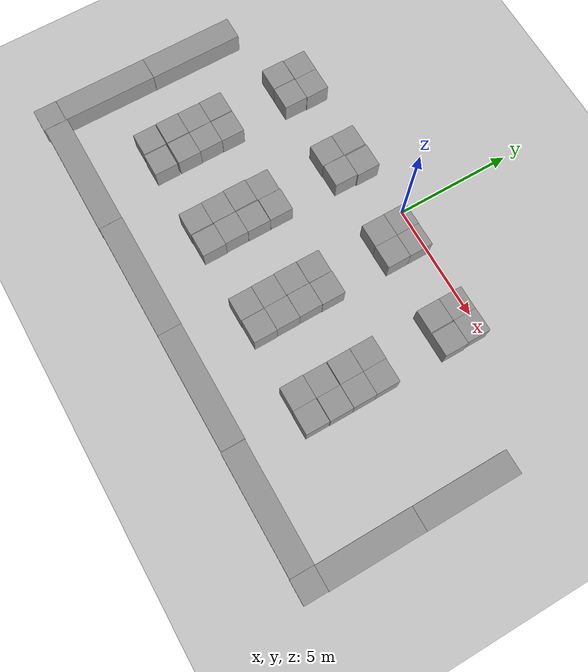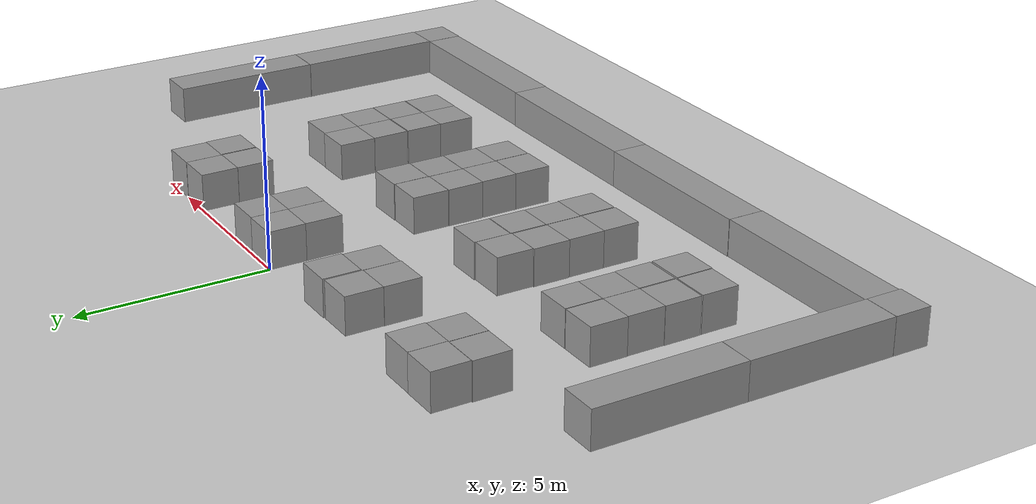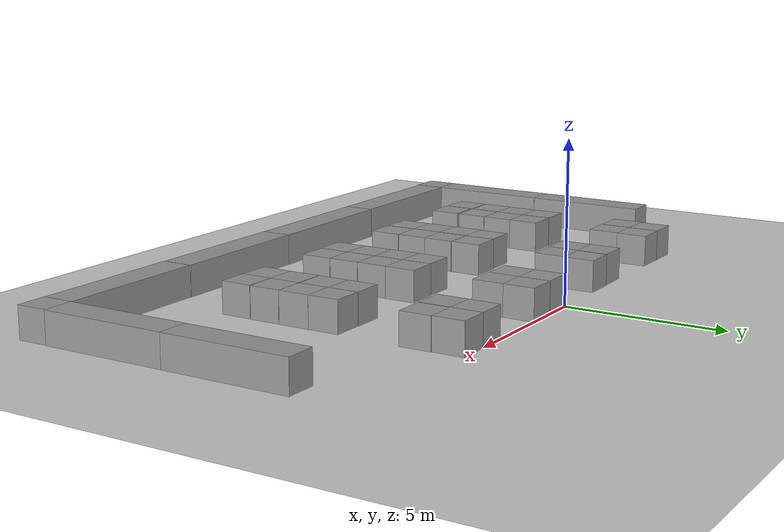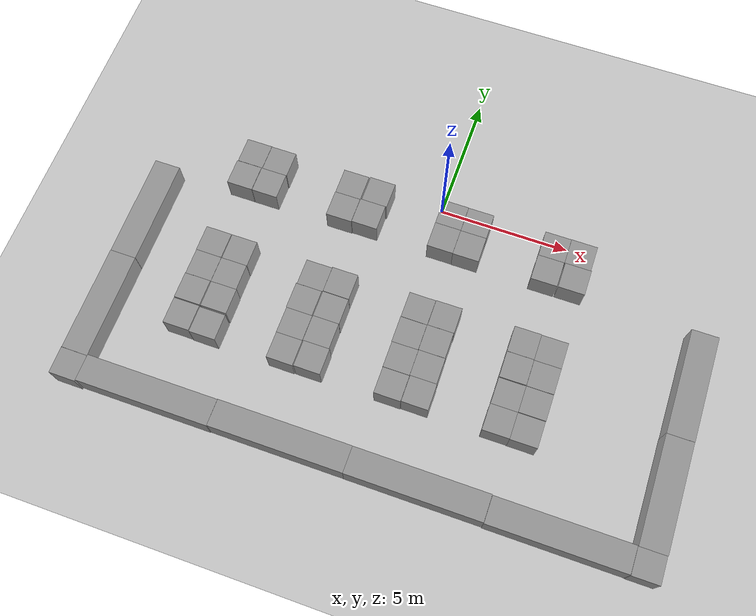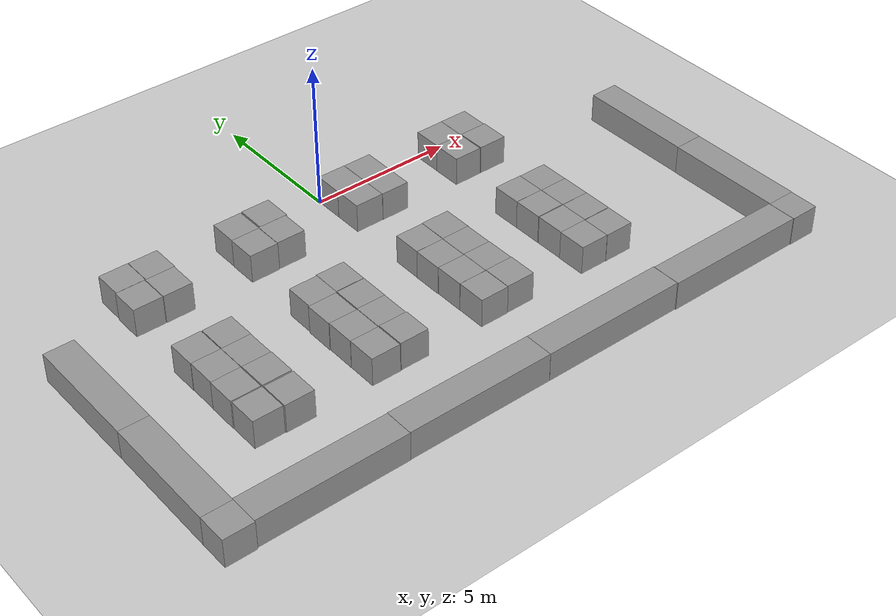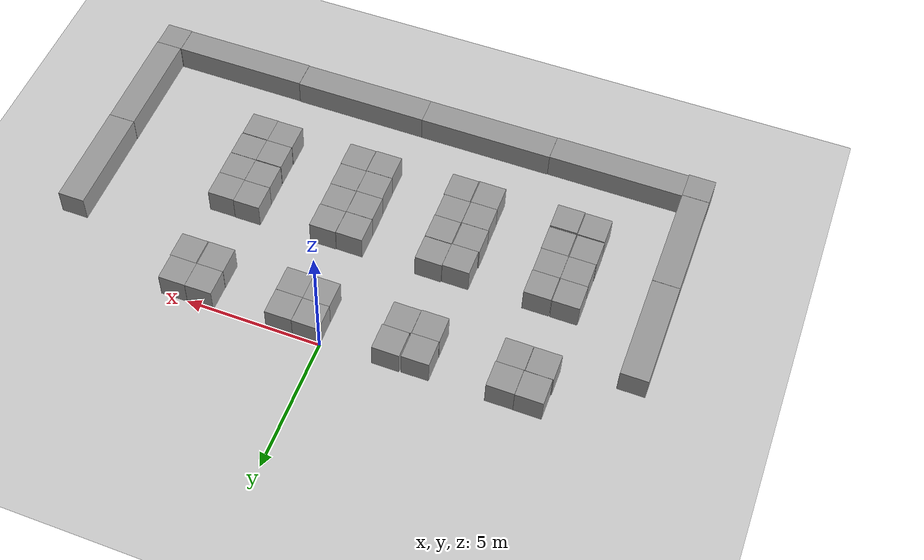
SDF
<sdf version="1.7">
 <world name="default">
  <model name="ground_plane">
   <static>1</static>
   <link name="link">
    <collision name="collision">
     <geometry><plane><normal>0 0 1</normal><size>100 100</size></plane></geometry>
     <surface>
      <contact><collide_bitmask>65535</collide_bitmask></contact>
      <friction><ode><mu>100</mu><mu2>50</mu2></ode></friction>
     </surface>
    </collision>
    <visual name="visual">
     <cast_shadows>0</cast_shadows>
     <geometry><plane><normal>0 0 1</normal><size>100 100</size></plane></geometry>
     <material>
      <script><uri>file://media/materials/scripts/gazebo.material</uri><name>Gazebo/Grey</name></script>
     </material>
    </visual>
   </link>
  </model>
  <model name="ball_bearing">
   <link name="link">
    <pose>0 0 0.003 0 -0 0</pose>
    <inertial>
     <mass>0.0011</mass>
     <inertia>
      <ixx>3.96e-09</ixx>
      <ixy>0</ixy>
      <ixz>0</ixz>
      <iyy>3.96e-09</iyy>
      <iyz>0</iyz>
      <izz>3.96e-09</izz>
     </inertia>
    </inertial>
    <collision name="collision">
     <geometry><sphere><radius>0.003</radius></sphere></geometry>
     <surface>
      <contact>
       <poissons_ratio>0.305</poissons_ratio>
       <elastic_modulus>2e+11</elastic_modulus>
       <ode><kp>100000</kp><kd>100</kd><max_vel>100</max_vel><min_depth>0.001</min_depth></ode>
      </contact>
      <friction>
       <torsional>
        <coefficient>1</coefficient>
        <use_patch_radius>0</use_patch_radius>
        <surface_radius>0.01</surface_radius>
       </torsional>
      </friction>
     </surface>
    </collision>
    <visual name="visual">
     <geometry><sphere><radius>0.003</radius></sphere></geometry>
     <material>
      <script><uri>file://media/materials/scripts/gazebo.material</uri><name>Gazebo/Grey</name></script>
     </material>
    </visual>
    <velocity_decay><linear>0</linear><angular>0.005</angular></velocity_decay>
   </link>
   <pose>-4.45266 -2.79694 -0.000369 0 -0 0</pose>
  </model>
  <model name="unit_box_39">
   <pose>-7.50251 -0.477823 0.499995 0 1e-05 0</pose>
   <link name="link">
    <inertial>
     <mass>1</mass>
     <inertia>
      <ixx>0.166667</ixx>
      <ixy>0</ixy>
      <ixz>0</ixz>
      <iyy>0.166667</iyy>
      <iyz>0</iyz>
      <izz>0.166667</izz>
     </inertia>
    </inertial>
    <collision name="collision"><geometry><box><size>1 1 1</size></box></geometry></collision>
    <visual name="visual">
     <geometry><box><size>1 1 1</size></box></geometry>
     <material>
      <script><name>Gazebo/Grey</name><uri>file://media/materials/scripts/gazebo.material</uri></script>
     </material>
    </visual>
   </link>
  </model>
  <model name="unit_box_40">
   <pose>-6.49573 -0.485833 0.499995 1e-05 0 -0.001146</pose>
   <link name="link">
    <inertial>
     <mass>1</mass>
     <inertia>
      <ixx>0.166667</ixx>
      <ixy>0</ixy>
      <ixz>0</ixz>
      <iyy>0.166667</iyy>
      <iyz>0</iyz>
      <izz>0.166667</izz>
     </inertia>
    </inertial>
    <collision name="collision"><geometry><box><size>1 1 1</size></box></geometry></collision>
    <visual name="visual">
     <geometry><box><size>1 1 1</size></box></geometry>
     <material>
      <script><name>Gazebo/Grey</name><uri>file://media/materials/scripts/gazebo.material</uri></script>
     </material>
    </visual>
   </link>
  </model>
  <model name="unit_box_41">
   <pose>-7.53449 -1.48259 0.499995 0 1e-05 0</pose>
   <link name="link">
    <inertial>
     <mass>1</mass>
     <inertia>
      <ixx>0.166667</ixx>
      <ixy>0</ixy>
      <ixz>0</ixz>
      <iyy>0.166667</iyy>
      <iyz>0</iyz>
      <izz>0.166667</izz>
     </inertia>
    </inertial>
    <collision name="collision"><geometry><box><size>1 1 1</size></box></geometry></collision>
    <visual name="visual">
     <geometry><box><size>1 1 1</size></box></geometry>
     <material>
      <script><name>Gazebo/Grey</name><uri>file://media/materials/scripts/gazebo.material</uri></script>
     </material>
    </visual>
   </link>
  </model>
  <model name="unit_box_42">
   <pose>-6.52039 -1.4858 0.499995 -1e-05 -0 -0.001146</pose>
   <link name="link">
    <inertial>
     <mass>1</mass>
     <inertia>
      <ixx>0.166667</ixx>
      <ixy>0</ixy>
      <ixz>0</ixz>
      <iyy>0.166667</iyy>
      <iyz>0</iyz>
      <izz>0.166667</izz>
     </inertia>
    </inertial>
    <collision name="collision"><geometry><box><size>1 1 1</size></box></geometry></collision>
    <visual name="visual">
     <geometry><box><size>1 1 1</size></box></geometry>
     <material>
      <script><name>Gazebo/Grey</name><uri>file://media/materials/scripts/gazebo.material</uri></script>
     </material>
    </visual>
   </link>
  </model>
  <model name="unit_box_47">
   <pose>-3.48688 -0.512956 0.5 0 -0 0.003058</pose>
   <link name="link">
    <inertial>
     <mass>1</mass>
     <inertia>
      <ixx>0.166667</ixx>
      <ixy>0</ixy>
      <ixz>0</ixz>
      <iyy>0.166667</iyy>
      <iyz>0</iyz>
      <izz>0.166667</izz>
     </inertia>
    </inertial>
    <collision name="collision"><geometry><box><size>1 1 1</size></box></geometry></collision>
    <visual name="visual">
     <geometry><box><size>1 1 1</size></box></geometry>
     <material>
      <script><name>Gazebo/Grey</name><uri>file://media/materials/scripts/gazebo.material</uri></script>
     </material>
    </visual>
   </link>
  </model>
  <model name="unit_box_48">
   <pose>-2.43745 -0.487554 0.499995 1e-05 -0 -0.003008</pose>
   <link name="link">
    <inertial>
     <mass>1</mass>
     <inertia>
      <ixx>0.166667</ixx>
      <ixy>0</ixy>
      <ixz>0</ixz>
      <iyy>0.166667</iyy>
      <iyz>0</iyz>
      <izz>0.166667</izz>
     </inertia>
    </inertial>
    <collision name="collision"><geometry><box><size>1 1 1</size></box></geometry></collision>
    <visual name="visual">
     <geometry><box><size>1 1 1</size></box></geometry>
     <material>
      <script><name>Gazebo/Grey</name><uri>file://media/materials/scripts/gazebo.material</uri></script>
     </material>
    </visual>
   </link>
  </model>
  <model name="unit_box_49">
   <pose>-3.49442 -1.51313 0.499995 1e-05 -0 0.003337</pose>
   <link name="link">
    <inertial>
     <mass>1</mass>
     <inertia>
      <ixx>0.166667</ixx>
      <ixy>0</ixy>
      <ixz>0</ixz>
      <iyy>0.166667</iyy>
      <iyz>0</iyz>
      <izz>0.166667</izz>
     </inertia>
    </inertial>
    <collision name="collision"><geometry><box><size>1 1 1</size></box></geometry></collision>
    <visual name="visual">
     <geometry><box><size>1 1 1</size></box></geometry>
     <material>
      <script><name>Gazebo/Grey</name><uri>file://media/materials/scripts/gazebo.material</uri></script>
     </material>
    </visual>
   </link>
  </model>
  <model name="unit_box_50">
   <pose>-2.48725 -1.48789 0.499995 0 -1e-05 -0.004023</pose>
   <link name="link">
    <inertial>
     <mass>1</mass>
     <inertia>
      <ixx>0.166667</ixx>
      <ixy>0</ixy>
      <ixz>0</ixz>
      <iyy>0.166667</iyy>
      <iyz>0</iyz>
      <izz>0.166667</izz>
     </inertia>
    </inertial>
    <collision name="collision"><geometry><box><size>1 1 1</size></box></geometry></collision>
    <visual name="visual">
     <geometry><box><size>1 1 1</size></box></geometry>
     <material>
      <script><name>Gazebo/Grey</name><uri>file://media/materials/scripts/gazebo.material</uri></script>
     </material>
    </visual>
   </link>
  </model>
  <model name="unit_box_55">
   <pose>0.500287 -0.496286 0.5 0 -0 0.000333</pose>
   <link name="link">
    <inertial>
     <mass>1</mass>
     <inertia>
      <ixx>0.166667</ixx>
      <ixy>0</ixy>
      <ixz>0</ixz>
      <iyy>0.166667</iyy>
      <iyz>0</iyz>
      <izz>0.166667</izz>
     </inertia>
    </inertial>
    <collision name="collision"><geometry><box><size>1 1 1</size></box></geometry></collision>
    <visual name="visual">
     <geometry><box><size>1 1 1</size></box></geometry>
     <material>
      <script><name>Gazebo/Grey</name><uri>file://media/materials/scripts/gazebo.material</uri></script>
     </material>
    </visual>
   </link>
  </model>
  <model name="unit_box_56">
   <pose>1.50356 -0.504387 0.499995 0 -1e-05 0.002161</pose>
   <link name="link">
    <inertial>
     <mass>1</mass>
     <inertia>
      <ixx>0.166667</ixx>
      <ixy>0</ixy>
      <ixz>0</ixz>
      <iyy>0.166667</iyy>
      <iyz>0</iyz>
      <izz>0.166667</izz>
     </inertia>
    </inertial>
    <collision name="collision"><geometry><box><size>1 1 1</size></box></geometry></collision>
    <visual name="visual">
     <geometry><box><size>1 1 1</size></box></geometry>
     <material>
      <script><name>Gazebo/Grey</name><uri>file://media/materials/scripts/gazebo.material</uri></script>
     </material>
    </visual>
   </link>
  </model>
  <model name="unit_box_57">
   <pose>0.502014 -1.49634 0.499995 -1e-05 -0 0.000237</pose>
   <link name="link">
    <inertial>
     <mass>1</mass>
     <inertia>
      <ixx>0.166667</ixx>
      <ixy>0</ixy>
      <ixz>0</ixz>
      <iyy>0.166667</iyy>
      <iyz>0</iyz>
      <izz>0.166667</izz>
     </inertia>
    </inertial>
    <collision name="collision"><geometry><box><size>1 1 1</size></box></geometry></collision>
    <visual name="visual">
     <geometry><box><size>1 1 1</size></box></geometry>
     <material>
      <script><name>Gazebo/Grey</name><uri>file://media/materials/scripts/gazebo.material</uri></script>
     </material>
    </visual>
   </link>
  </model>
  <model name="unit_box_58">
   <pose>1.50303 -1.5044 0.499995 1e-05 -0 0.002162</pose>
   <link name="link">
    <inertial>
     <mass>1</mass>
     <inertia>
      <ixx>0.166667</ixx>
      <ixy>0</ixy>
      <ixz>0</ixz>
      <iyy>0.166667</iyy>
      <iyz>0</iyz>
      <izz>0.166667</izz>
     </inertia>
    </inertial>
    <collision name="collision"><geometry><box><size>1 1 1</size></box></geometry></collision>
    <visual name="visual">
     <geometry><box><size>1 1 1</size></box></geometry>
     <material>
      <script><name>Gazebo/Grey</name><uri>file://media/materials/scripts/gazebo.material</uri></script>
     </material>
    </visual>
   </link>
  </model>
  <model name="unit_box_63">
   <pose>4.51375 -0.503393 0.499995 -1e-05 -0 0.001676</pose>
   <link name="link">
    <inertial>
     <mass>1</mass>
     <inertia>
      <ixx>0.166667</ixx>
      <ixy>0</ixy>
      <ixz>0</ixz>
      <iyy>0.166667</iyy>
      <iyz>0</iyz>
      <izz>0.166667</izz>
     </inertia>
    </inertial>
    <collision name="collision"><geometry><box><size>1 1 1</size></box></geometry></collision>
    <visual name="visual">
     <geometry><box><size>1 1 1</size></box></geometry>
     <material>
      <script><name>Gazebo/Grey</name><uri>file://media/materials/scripts/gazebo.material</uri></script>
     </material>
    </visual>
   </link>
  </model>
  <model name="unit_box_64">
   <pose>5.51494 -0.497894 0.499995 1e-05 -0 0.000283</pose>
   <link name="link">
    <inertial>
     <mass>1</mass>
     <inertia>
      <ixx>0.166667</ixx>
      <ixy>0</ixy>
      <ixz>0</ixz>
      <iyy>0.166667</iyy>
      <iyz>0</iyz>
      <izz>0.166667</izz>
     </inertia>
    </inertial>
    <collision name="collision"><geometry><box><size>1 1 1</size></box></geometry></collision>
    <visual name="visual">
     <geometry><box><size>1 1 1</size></box></geometry>
     <material>
      <script><name>Gazebo/Grey</name><uri>file://media/materials/scripts/gazebo.material</uri></script>
     </material>
    </visual>
   </link>
  </model>
  <model name="unit_box_65">
   <pose>4.50823 -1.50342 0.499995 1e-05 -0 0.001678</pose>
   <link name="link">
    <inertial>
     <mass>1</mass>
     <inertia>
      <ixx>0.166667</ixx>
      <ixy>0</ixy>
      <ixz>0</ixz>
      <iyy>0.166667</iyy>
      <iyz>0</iyz>
      <izz>0.166667</izz>
     </inertia>
    </inertial>
    <collision name="collision"><geometry><box><size>1 1 1</size></box></geometry></collision>
    <visual name="visual">
     <geometry><box><size>1 1 1</size></box></geometry>
     <material>
      <script><name>Gazebo/Grey</name><uri>file://media/materials/scripts/gazebo.material</uri></script>
     </material>
    </visual>
   </link>
  </model>
  <model name="unit_box_66">
   <pose>5.54396 -1.498 0.499995 0 1e-05 0.000451</pose>
   <link name="link">
    <inertial>
     <mass>1</mass>
     <inertia>
      <ixx>0.166667</ixx>
      <ixy>0</ixy>
      <ixz>0</ixz>
      <iyy>0.166667</iyy>
      <iyz>0</iyz>
      <izz>0.166667</izz>
     </inertia>
    </inertial>
    <collision name="collision"><geometry><box><size>1 1 1</size></box></geometry></collision>
    <visual name="visual">
     <geometry><box><size>1 1 1</size></box></geometry>
     <material>
      <script><name>Gazebo/Grey</name><uri>file://media/materials/scripts/gazebo.material</uri></script>
     </material>
    </visual>
   </link>
  </model>
  <model name="unit_box_67">
   <pose>-7.51826 -4.47877 0.499995 1e-05 -0 -0.000636</pose>
   <link name="link">
    <inertial>
     <mass>1</mass>
     <inertia>
      <ixx>0.166667</ixx>
      <ixy>0</ixy>
      <ixz>0</ixz>
      <iyy>0.166667</iyy>
      <iyz>0</iyz>
      <izz>0.166667</izz>
     </inertia>
    </inertial>
    <collision name="collision"><geometry><box><size>1 1 1</size></box></geometry></collision>
    <visual name="visual">
     <geometry><box><size>1 1 1</size></box></geometry>
     <material>
      <script><name>Gazebo/Grey</name><uri>file://media/materials/scripts/gazebo.material</uri></script>
     </material>
    </visual>
   </link>
  </model>
  <model name="unit_box_68">
   <pose>-6.49301 -4.48097 0.499995 -1e-05 0 0.001419</pose>
   <link name="link">
    <inertial>
     <mass>1</mass>
     <inertia>
      <ixx>0.166667</ixx>
      <ixy>0</ixy>
      <ixz>0</ixz>
      <iyy>0.166667</iyy>
      <iyz>0</iyz>
      <izz>0.166667</izz>
     </inertia>
    </inertial>
    <collision name="collision"><geometry><box><size>1 1 1</size></box></geometry></collision>
    <visual name="visual">
     <geometry><box><size>1 1 1</size></box></geometry>
     <material>
      <script><name>Gazebo/Grey</name><uri>file://media/materials/scripts/gazebo.material</uri></script>
     </material>
    </visual>
   </link>
  </model>
  <model name="unit_box_69">
   <pose>-7.5077 -5.47885 0.499995 0 1e-05 -0.000646</pose>
   <link name="link">
    <inertial>
     <mass>1</mass>
     <inertia>
      <ixx>0.166667</ixx>
      <ixy>0</ixy>
      <ixz>0</ixz>
      <iyy>0.166667</iyy>
      <iyz>0</iyz>
      <izz>0.166667</izz>
     </inertia>
    </inertial>
    <collision name="collision"><geometry><box><size>1 1 1</size></box></geometry></collision>
    <visual name="visual">
     <geometry><box><size>1 1 1</size></box></geometry>
     <material>
      <script><name>Gazebo/Grey</name><uri>file://media/materials/scripts/gazebo.material</uri></script>
     </material>
    </visual>
   </link>
  </model>
  <model name="unit_box_70">
   <pose>-6.50265 -5.481 0.499995 -1e-05 0 0.001387</pose>
   <link name="link">
    <inertial>
     <mass>1</mass>
     <inertia>
      <ixx>0.166667</ixx>
      <ixy>0</ixy>
      <ixz>0</ixz>
      <iyy>0.166667</iyy>
      <iyz>0</iyz>
      <izz>0.166667</izz>
     </inertia>
    </inertial>
    <collision name="collision"><geometry><box><size>1 1 1</size></box></geometry></collision>
    <visual name="visual">
     <geometry><box><size>1 1 1</size></box></geometry>
     <material>
      <script><name>Gazebo/Grey</name><uri>file://media/materials/scripts/gazebo.material</uri></script>
     </material>
    </visual>
   </link>
  </model>
  <model name="unit_box_71">
   <pose>-7.52046 -6.47887 0.499995 0 -1e-05 -0.000674</pose>
   <link name="link">
    <inertial>
     <mass>1</mass>
     <inertia>
      <ixx>0.166667</ixx>
      <ixy>0</ixy>
      <ixz>0</ixz>
      <iyy>0.166667</iyy>
      <iyz>0</iyz>
      <izz>0.166667</izz>
     </inertia>
    </inertial>
    <collision name="collision"><geometry><box><size>1 1 1</size></box></geometry></collision>
    <visual name="visual">
     <geometry><box><size>1 1 1</size></box></geometry>
     <material>
      <script><name>Gazebo/Grey</name><uri>file://media/materials/scripts/gazebo.material</uri></script>
     </material>
    </visual>
   </link>
  </model>
  <model name="unit_box_72">
   <pose>-6.48614 -6.48102 0.499995 0 -1e-05 0.001393</pose>
   <link name="link">
    <inertial>
     <mass>1</mass>
     <inertia>
      <ixx>0.166667</ixx>
      <ixy>0</ixy>
      <ixz>0</ixz>
      <iyy>0.166667</iyy>
      <iyz>0</iyz>
      <izz>0.166667</izz>
     </inertia>
    </inertial>
    <collision name="collision"><geometry><box><size>1 1 1</size></box></geometry></collision>
    <visual name="visual">
     <geometry><box><size>1 1 1</size></box></geometry>
     <material>
      <script><name>Gazebo/Grey</name><uri>file://media/materials/scripts/gazebo.material</uri></script>
     </material>
    </visual>
   </link>
  </model>
  <model name="unit_box_73">
   <pose>-7.50997 -7.51489 0.499995 0 1e-05 0</pose>
   <link name="link">
    <inertial>
     <mass>1</mass>
     <inertia>
      <ixx>0.166667</ixx>
      <ixy>0</ixy>
      <ixz>0</ixz>
      <iyy>0.166667</iyy>
      <iyz>0</iyz>
      <izz>0.166667</izz>
     </inertia>
    </inertial>
    <collision name="collision"><geometry><box><size>1 1 1</size></box></geometry></collision>
    <visual name="visual">
     <geometry><box><size>1 1 1</size></box></geometry>
     <material>
      <script><name>Gazebo/Grey</name><uri>file://media/materials/scripts/gazebo.material</uri></script>
     </material>
    </visual>
   </link>
  </model>
  <model name="unit_box_74">
   <pose>-6.48273 -7.53847 0.499995 0 1e-05 0</pose>
   <link name="link">
    <inertial>
     <mass>1</mass>
     <inertia>
      <ixx>0.166667</ixx>
      <ixy>0</ixy>
      <ixz>0</ixz>
      <iyy>0.166667</iyy>
      <iyz>0</iyz>
      <izz>0.166667</izz>
     </inertia>
    </inertial>
    <collision name="collision"><geometry><box><size>1 1 1</size></box></geometry></collision>
    <visual name="visual">
     <geometry><box><size>1 1 1</size></box></geometry>
     <material>
      <script><name>Gazebo/Grey</name><uri>file://media/materials/scripts/gazebo.material</uri></script>
     </material>
    </visual>
   </link>
  </model>
  <model name="unit_box_76">
   <pose>-2.49508 -4.49038 0.5 -0 -0 -0.003729</pose>
   <link name="link">
    <inertial>
     <mass>1</mass>
     <inertia>
      <ixx>0.166667</ixx>
      <ixy>0</ixy>
      <ixz>0</ixz>
      <iyy>0.166667</iyy>
      <iyz>0</iyz>
      <izz>0.166667</izz>
     </inertia>
    </inertial>
    <collision name="collision"><geometry><box><size>1 1 1</size></box></geometry></collision>
    <visual name="visual">
     <geometry><box><size>1 1 1</size></box></geometry>
     <material>
      <script><name>Gazebo/Grey</name><uri>file://media/materials/scripts/gazebo.material</uri></script>
     </material>
    </visual>
   </link>
  </model>
  <model name="unit_box_77">
   <pose>-3.52954 -5.52214 0.499995 0 1e-05 -0.001492</pose>
   <link name="link">
    <inertial>
     <mass>1</mass>
     <inertia>
      <ixx>0.166667</ixx>
      <ixy>0</ixy>
      <ixz>0</ixz>
      <iyy>0.166667</iyy>
      <iyz>0</iyz>
      <izz>0.166667</izz>
     </inertia>
    </inertial>
    <collision name="collision"><geometry><box><size>1 1 1</size></box></geometry></collision>
    <visual name="visual">
     <geometry><box><size>1 1 1</size></box></geometry>
     <material>
      <script><name>Gazebo/Grey</name><uri>file://media/materials/scripts/gazebo.material</uri></script>
     </material>
    </visual>
   </link>
  </model>
  <model name="unit_box_78">
   <pose>-2.49461 -5.50544 0.499995 1e-05 -0 -0.000245</pose>
   <link name="link">
    <inertial>
     <mass>1</mass>
     <inertia>
      <ixx>0.166667</ixx>
      <ixy>0</ixy>
      <ixz>0</ixz>
      <iyy>0.166667</iyy>
      <iyz>0</iyz>
      <izz>0.166667</izz>
     </inertia>
    </inertial>
    <collision name="collision"><geometry><box><size>1 1 1</size></box></geometry></collision>
    <visual name="visual">
     <geometry><box><size>1 1 1</size></box></geometry>
     <material>
      <script><name>Gazebo/Grey</name><uri>file://media/materials/scripts/gazebo.material</uri></script>
     </material>
    </visual>
   </link>
  </model>
  <model name="unit_box_79">
   <pose>-3.51381 -6.52222 0.499995 0 1e-05 -0.001472</pose>
   <link name="link">
    <inertial>
     <mass>1</mass>
     <inertia>
      <ixx>0.166667</ixx>
      <ixy>0</ixy>
      <ixz>0</ixz>
      <iyy>0.166667</iyy>
      <iyz>0</iyz>
      <izz>0.166667</izz>
     </inertia>
    </inertial>
    <collision name="collision"><geometry><box><size>1 1 1</size></box></geometry></collision>
    <visual name="visual">
     <geometry><box><size>1 1 1</size></box></geometry>
     <material>
      <script><name>Gazebo/Grey</name><uri>file://media/materials/scripts/gazebo.material</uri></script>
     </material>
    </visual>
   </link>
  </model>
  <model name="unit_box_80">
   <pose>-2.50427 -6.50547 0.499995 1e-05 -0 -0.000244</pose>
   <link name="link">
    <inertial>
     <mass>1</mass>
     <inertia>
      <ixx>0.166667</ixx>
      <ixy>0</ixy>
      <ixz>0</ixz>
      <iyy>0.166667</iyy>
      <iyz>0</iyz>
      <izz>0.166667</izz>
     </inertia>
    </inertial>
    <collision name="collision"><geometry><box><size>1 1 1</size></box></geometry></collision>
    <visual name="visual">
     <geometry><box><size>1 1 1</size></box></geometry>
     <material>
      <script><name>Gazebo/Grey</name><uri>file://media/materials/scripts/gazebo.material</uri></script>
     </material>
    </visual>
   </link>
  </model>
  <model name="unit_box_81">
   <pose>-3.50959 -7.52233 0.499995 0 -1e-05 -0.00154</pose>
   <link name="link">
    <inertial>
     <mass>1</mass>
     <inertia>
      <ixx>0.166667</ixx>
      <ixy>0</ixy>
      <ixz>0</ixz>
      <iyy>0.166667</iyy>
      <iyz>0</iyz>
      <izz>0.166667</izz>
     </inertia>
    </inertial>
    <collision name="collision"><geometry><box><size>1 1 1</size></box></geometry></collision>
    <visual name="visual">
     <geometry><box><size>1 1 1</size></box></geometry>
     <material>
      <script><name>Gazebo/Grey</name><uri>file://media/materials/scripts/gazebo.material</uri></script>
     </material>
    </visual>
   </link>
  </model>
  <model name="unit_box_82">
   <pose>-2.47697 -7.5055 0.499995 0 -1e-05 -0.000271</pose>
   <link name="link">
    <inertial>
     <mass>1</mass>
     <inertia>
      <ixx>0.166667</ixx>
      <ixy>0</ixy>
      <ixz>0</ixz>
      <iyy>0.166667</iyy>
      <iyz>0</iyz>
      <izz>0.166667</izz>
     </inertia>
    </inertial>
    <collision name="collision"><geometry><box><size>1 1 1</size></box></geometry></collision>
    <visual name="visual">
     <geometry><box><size>1 1 1</size></box></geometry>
     <material>
      <script><name>Gazebo/Grey</name><uri>file://media/materials/scripts/gazebo.material</uri></script>
     </material>
    </visual>
   </link>
  </model>
  <model name="unit_box_83">
   <pose>0.507375 -4.49356 0.499995 -0 1e-05 -0.005524</pose>
   <link name="link">
    <inertial>
     <mass>1</mass>
     <inertia>
      <ixx>0.166667</ixx>
      <ixy>0</ixy>
      <ixz>0</ixz>
      <iyy>0.166667</iyy>
      <iyz>0</iyz>
      <izz>0.166667</izz>
     </inertia>
    </inertial>
    <collision name="collision"><geometry><box><size>1 1 1</size></box></geometry></collision>
    <visual name="visual">
     <geometry><box><size>1 1 1</size></box></geometry>
     <material>
      <script><name>Gazebo/Grey</name><uri>file://media/materials/scripts/gazebo.material</uri></script>
     </material>
    </visual>
   </link>
  </model>
  <model name="unit_box_84">
   <pose>1.51517 -4.47936 0.499995 1e-05 -0 0.001921</pose>
   <link name="link">
    <inertial>
     <mass>1</mass>
     <inertia>
      <ixx>0.166667</ixx>
      <ixy>0</ixy>
      <ixz>0</ixz>
      <iyy>0.166667</iyy>
      <iyz>0</iyz>
      <izz>0.166667</izz>
     </inertia>
    </inertial>
    <collision name="collision"><geometry><box><size>1 1 1</size></box></geometry></collision>
    <visual name="visual">
     <geometry><box><size>1 1 1</size></box></geometry>
     <material>
      <script><name>Gazebo/Grey</name><uri>file://media/materials/scripts/gazebo.material</uri></script>
     </material>
    </visual>
   </link>
  </model>
  <model name="unit_box_85">
   <pose>0.50068 -5.49686 0.499995 -9e-06 -0 0.001111</pose>
   <link name="link">
    <inertial>
     <mass>1</mass>
     <inertia>
      <ixx>0.166667</ixx>
      <ixy>0</ixy>
      <ixz>0</ixz>
      <iyy>0.166667</iyy>
      <iyz>0</iyz>
      <izz>0.166667</izz>
     </inertia>
    </inertial>
    <collision name="collision"><geometry><box><size>1 1 1</size></box></geometry></collision>
    <visual name="visual">
     <geometry><box><size>1 1 1</size></box></geometry>
     <material>
      <script><name>Gazebo/Grey</name><uri>file://media/materials/scripts/gazebo.material</uri></script>
     </material>
    </visual>
   </link>
  </model>
  <model name="unit_box_87">
   <pose>0.515494 -6.49691 0.499995 1e-05 -0 0.001228</pose>
   <link name="link">
    <inertial>
     <mass>1</mass>
     <inertia>
      <ixx>0.166667</ixx>
      <ixy>0</ixy>
      <ixz>0</ixz>
      <iyy>0.166667</iyy>
      <iyz>0</iyz>
      <izz>0.166667</izz>
     </inertia>
    </inertial>
    <collision name="collision"><geometry><box><size>1 1 1</size></box></geometry></collision>
    <visual name="visual">
     <geometry><box><size>1 1 1</size></box></geometry>
     <material>
      <script><name>Gazebo/Grey</name><uri>file://media/materials/scripts/gazebo.material</uri></script>
     </material>
    </visual>
   </link>
  </model>
  <model name="unit_box_88">
   <pose>1.51656 -6.48148 0.499995 0 -1e-05 0.001813</pose>
   <link name="link">
    <inertial>
     <mass>1</mass>
     <inertia>
      <ixx>0.166667</ixx>
      <ixy>0</ixy>
      <ixz>0</ixz>
      <iyy>0.166667</iyy>
      <iyz>0</iyz>
      <izz>0.166667</izz>
     </inertia>
    </inertial>
    <collision name="collision"><geometry><box><size>1 1 1</size></box></geometry></collision>
    <visual name="visual">
     <geometry><box><size>1 1 1</size></box></geometry>
     <material>
      <script><name>Gazebo/Grey</name><uri>file://media/materials/scripts/gazebo.material</uri></script>
     </material>
    </visual>
   </link>
  </model>
  <model name="unit_box_89">
   <pose>0.524361 -7.49936 0.499995 0 1e-05 0</pose>
   <link name="link">
    <inertial>
     <mass>1</mass>
     <inertia>
      <ixx>0.166667</ixx>
      <ixy>0</ixy>
      <ixz>0</ixz>
      <iyy>0.166667</iyy>
      <iyz>0</iyz>
      <izz>0.166667</izz>
     </inertia>
    </inertial>
    <collision name="collision"><geometry><box><size>1 1 1</size></box></geometry></collision>
    <visual name="visual">
     <geometry><box><size>1 1 1</size></box></geometry>
     <material>
      <script><name>Gazebo/Grey</name><uri>file://media/materials/scripts/gazebo.material</uri></script>
     </material>
    </visual>
   </link>
  </model>
  <model name="unit_box_90">
   <pose>1.5345 -7.48179 0.499995 -1e-05 -0 0.001178</pose>
   <link name="link">
    <inertial>
     <mass>1</mass>
     <inertia>
      <ixx>0.166667</ixx>
      <ixy>0</ixy>
      <ixz>0</ixz>
      <iyy>0.166667</iyy>
      <iyz>0</iyz>
      <izz>0.166667</izz>
     </inertia>
    </inertial>
    <collision name="collision"><geometry><box><size>1 1 1</size></box></geometry></collision>
    <visual name="visual">
     <geometry><box><size>1 1 1</size></box></geometry>
     <material>
      <script><name>Gazebo/Grey</name><uri>file://media/materials/scripts/gazebo.material</uri></script>
     </material>
    </visual>
   </link>
  </model>
  <model name="unit_box_91">
   <pose>4.49267 -4.48873 0.499995 0 1e-05 0.002912</pose>
   <link name="link">
    <inertial>
     <mass>1</mass>
     <inertia>
      <ixx>0.166667</ixx>
      <ixy>0</ixy>
      <ixz>0</ixz>
      <iyy>0.166667</iyy>
      <iyz>0</iyz>
      <izz>0.166667</izz>
     </inertia>
    </inertial>
    <collision name="collision"><geometry><box><size>1 1 1</size></box></geometry></collision>
    <visual name="visual">
     <geometry><box><size>1 1 1</size></box></geometry>
     <material>
      <script><name>Gazebo/Grey</name><uri>file://media/materials/scripts/gazebo.material</uri></script>
     </material>
    </visual>
   </link>
  </model>
  <model name="unit_box_92">
   <pose>5.49279 -4.49982 0.499995 0 1e-05 0.002808</pose>
   <link name="link">
    <inertial>
     <mass>1</mass>
     <inertia>
      <ixx>0.166667</ixx>
      <ixy>0</ixy>
      <ixz>0</ixz>
      <iyy>0.166667</iyy>
      <iyz>0</iyz>
      <izz>0.166667</izz>
     </inertia>
    </inertial>
    <collision name="collision"><geometry><box><size>1 1 1</size></box></geometry></collision>
    <visual name="visual">
     <geometry><box><size>1 1 1</size></box></geometry>
     <material>
      <script><name>Gazebo/Grey</name><uri>file://media/materials/scripts/gazebo.material</uri></script>
     </material>
    </visual>
   </link>
  </model>
  <model name="unit_box_93">
   <pose>4.49631 -5.48968 0.499995 0 -1e-05 0.004434</pose>
   <link name="link">
    <inertial>
     <mass>1</mass>
     <inertia>
      <ixx>0.166667</ixx>
      <ixy>0</ixy>
      <ixz>0</ixz>
      <iyy>0.166667</iyy>
      <iyz>0</iyz>
      <izz>0.166667</izz>
     </inertia>
    </inertial>
    <collision name="collision"><geometry><box><size>1 1 1</size></box></geometry></collision>
    <visual name="visual">
     <geometry><box><size>1 1 1</size></box></geometry>
     <material>
      <script><name>Gazebo/Grey</name><uri>file://media/materials/scripts/gazebo.material</uri></script>
     </material>
    </visual>
   </link>
  </model>
  <model name="unit_box_94">
   <pose>5.49811 -5.49988 0.499995 1e-05 -0 0.002783</pose>
   <link name="link">
    <inertial>
     <mass>1</mass>
     <inertia>
      <ixx>0.166667</ixx>
      <ixy>0</ixy>
      <ixz>0</ixz>
      <iyy>0.166667</iyy>
      <iyz>0</iyz>
      <izz>0.166667</izz>
     </inertia>
    </inertial>
    <collision name="collision"><geometry><box><size>1 1 1</size></box></geometry></collision>
    <visual name="visual">
     <geometry><box><size>1 1 1</size></box></geometry>
     <material>
      <script><name>Gazebo/Grey</name><uri>file://media/materials/scripts/gazebo.material</uri></script>
     </material>
    </visual>
   </link>
  </model>
  <model name="unit_box_95">
   <pose>4.49936 -6.51647 0.499995 1e-05 -0 0.00073</pose>
   <link name="link">
    <inertial>
     <mass>1</mass>
     <inertia>
      <ixx>0.166667</ixx>
      <ixy>0</ixy>
      <ixz>0</ixz>
      <iyy>0.166667</iyy>
      <iyz>0</iyz>
      <izz>0.166667</izz>
     </inertia>
    </inertial>
    <collision name="collision"><geometry><box><size>1 1 1</size></box></geometry></collision>
    <visual name="visual">
     <geometry><box><size>1 1 1</size></box></geometry>
     <material>
      <script><name>Gazebo/Grey</name><uri>file://media/materials/scripts/gazebo.material</uri></script>
     </material>
    </visual>
   </link>
  </model>
  <model name="unit_box_96">
   <pose>5.49937 -6.50668 0.499995 -1e-05 0 0.000734</pose>
   <link name="link">
    <inertial>
     <mass>1</mass>
     <inertia>
      <ixx>0.166667</ixx>
      <ixy>0</ixy>
      <ixz>0</ixz>
      <iyy>0.166667</iyy>
      <iyz>0</iyz>
      <izz>0.166667</izz>
     </inertia>
    </inertial>
    <collision name="collision"><geometry><box><size>1 1 1</size></box></geometry></collision>
    <visual name="visual">
     <geometry><box><size>1 1 1</size></box></geometry>
     <material>
      <script><name>Gazebo/Grey</name><uri>file://media/materials/scripts/gazebo.material</uri></script>
     </material>
    </visual>
   </link>
  </model>
  <model name="unit_box_97">
   <pose>4.48944 -7.51648 0.499995 -1e-05 -0 0.000722</pose>
   <link name="link">
    <inertial>
     <mass>1</mass>
     <inertia>
      <ixx>0.166667</ixx>
      <ixy>0</ixy>
      <ixz>0</ixz>
      <iyy>0.166667</iyy>
      <iyz>0</iyz>
      <izz>0.166667</izz>
     </inertia>
    </inertial>
    <collision name="collision"><geometry><box><size>1 1 1</size></box></geometry></collision>
    <visual name="visual">
     <geometry><box><size>1 1 1</size></box></geometry>
     <material>
      <script><name>Gazebo/Grey</name><uri>file://media/materials/scripts/gazebo.material</uri></script>
     </material>
    </visual>
   </link>
  </model>
  <model name="unit_box_98">
   <pose>5.48946 -7.52545 0.499995 1e-05 -0 0.00072</pose>
   <link name="link">
    <inertial>
     <mass>1</mass>
     <inertia>
      <ixx>0.166667</ixx>
      <ixy>0</ixy>
      <ixz>0</ixz>
      <iyy>0.166667</iyy>
      <iyz>0</iyz>
      <izz>0.166667</izz>
     </inertia>
    </inertial>
    <collision name="collision"><geometry><box><size>1 1 1</size></box></geometry></collision>
    <visual name="visual">
     <geometry><box><size>1 1 1</size></box></geometry>
     <material>
      <script><name>Gazebo/Grey</name><uri>file://media/materials/scripts/gazebo.material</uri></script>
     </material>
    </visual>
   </link>
  </model>
  <model name="unit_box_clone">
   <pose>7.49313 -10.5412 0.497878 0 -0.000849 -2.3e-05</pose>
   <link name="link">
    <inertial>
     <mass>1</mass>
     <inertia>
      <ixx>0.166667</ixx>
      <ixy>0</ixy>
      <ixz>0</ixz>
      <iyy>0.166667</iyy>
      <iyz>0</iyz>
      <izz>0.166667</izz>
     </inertia>
    </inertial>
    <collision name="collision"><geometry><box><size>4.99976 1 1</size></box></geometry></collision>
    <visual name="visual">
     <geometry><box><size>4.99976 1 1</size></box></geometry>
     <material>
      <script><name>Gazebo/Grey</name><uri>file://media/materials/scripts/gazebo.material</uri></script>
     </material>
    </visual>
   </link>
  </model>
  <model name="unit_box_clone_0">
   <pose>2.48596 -10.5184 0.497878 0 -0.000849 -4.3e-05</pose>
   <link name="link">
    <inertial>
     <mass>1</mass>
     <inertia>
      <ixx>0.166667</ixx>
      <ixy>0</ixy>
      <ixz>0</ixz>
      <iyy>0.166667</iyy>
      <iyz>0</iyz>
      <izz>0.166667</izz>
     </inertia>
    </inertial>
    <collision name="collision"><geometry><box><size>4.99976 1 1</size></box></geometry></collision>
    <visual name="visual">
     <geometry><box><size>4.99976 1 1</size></box></geometry>
     <material>
      <script><name>Gazebo/Grey</name><uri>file://media/materials/scripts/gazebo.material</uri></script>
     </material>
    </visual>
   </link>
  </model>
  <model name="unit_box_clone_1">
   <pose>-2.51408 -10.5142 0.497878 0 0.000849 1.6e-05</pose>
   <link name="link">
    <inertial>
     <mass>1</mass>
     <inertia>
      <ixx>0.166667</ixx>
      <ixy>0</ixy>
      <ixz>0</ixz>
      <iyy>0.166667</iyy>
      <iyz>0</iyz>
      <izz>0.166667</izz>
     </inertia>
    </inertial>
    <collision name="collision"><geometry><box><size>4.99976 1 1</size></box></geometry></collision>
    <visual name="visual">
     <geometry><box><size>4.99976 1 1</size></box></geometry>
     <material>
      <script><name>Gazebo/Grey</name><uri>file://media/materials/scripts/gazebo.material</uri></script>
     </material>
    </visual>
   </link>
  </model>
  <model name="unit_box_clone_1_clone_3">
   <pose>-7.51455 -10.5277 0.497878 0 -0.000849 -4.7e-05</pose>
   <link name="link">
    <inertial>
     <mass>1</mass>
     <inertia>
      <ixx>0.166667</ixx>
      <ixy>0</ixy>
      <ixz>0</ixz>
      <iyy>0.166667</iyy>
      <iyz>0</iyz>
      <izz>0.166667</izz>
     </inertia>
    </inertial>
    <collision name="collision"><geometry><box><size>4.99976 1 1</size></box></geometry></collision>
    <visual name="visual">
     <geometry><box><size>4.99976 1 1</size></box></geometry>
     <material>
      <script><name>Gazebo/Grey</name><uri>file://media/materials/scripts/gazebo.material</uri></script>
     </material>
    </visual>
   </link>
  </model>
  <model name="unit_box_clone_4">
   <pose>10.5132 -4.02341 0.499999 0 2e-06 0.000786</pose>
   <link name="link">
    <inertial>
     <mass>1</mass>
     <inertia>
      <ixx>0.166667</ixx>
      <ixy>0</ixy>
      <ixz>0</ixz>
      <iyy>0.166667</iyy>
      <iyz>0</iyz>
      <izz>0.166667</izz>
     </inertia>
    </inertial>
    <collision name="collision"><geometry><box><size>1 4.02153 1</size></box></geometry></collision>
    <visual name="visual">
     <geometry><box><size>1 4.02153 1</size></box></geometry>
     <material>
      <script><name>Gazebo/Grey</name><uri>file://media/materials/scripts/gazebo.material</uri></script>
     </material>
    </visual>
   </link>
  </model>
  <model name="unit_box_clone_5">
   <pose>10.5111 -8.04554 0.499998 0 5e-06 0.001819</pose>
   <link name="link">
    <inertial>
     <mass>1</mass>
     <inertia>
      <ixx>0.166667</ixx>
      <ixy>0</ixy>
      <ixz>0</ixz>
      <iyy>0.166667</iyy>
      <iyz>0</iyz>
      <izz>0.166667</izz>
     </inertia>
    </inertial>
    <collision name="collision"><geometry><box><size>1 4.02153 1</size></box></geometry></collision>
    <visual name="visual">
     <geometry><box><size>1 4.02153 1</size></box></geometry>
     <material>
      <script><name>Gazebo/Grey</name><uri>file://media/materials/scripts/gazebo.material</uri></script>
     </material>
    </visual>
   </link>
  </model>
  <model name="unit_box_clone_6">
   <pose>-10.5076 -8.06366 0.499234 0.000381 -0 -0.003507</pose>
   <link name="link">
    <inertial>
     <mass>1</mass>
     <inertia>
      <ixx>0.166667</ixx>
      <ixy>0</ixy>
      <ixz>0</ixz>
      <iyy>0.166667</iyy>
      <iyz>0</iyz>
      <izz>0.166667</izz>
     </inertia>
    </inertial>
    <collision name="collision"><geometry><box><size>1 4.02153 1</size></box></geometry></collision>
    <visual name="visual">
     <geometry><box><size>1 4.02153 1</size></box></geometry>
     <material>
      <script><name>Gazebo/Grey</name><uri>file://media/materials/scripts/gazebo.material</uri></script>
     </material>
    </visual>
   </link>
  </model>
  <model name="unit_box_clone_7">
   <pose>-10.4985 -4.04042 0.5 0 -0 -0.000206</pose>
   <link name="link">
    <inertial>
     <mass>1</mass>
     <inertia>
      <ixx>0.166667</ixx>
      <ixy>0</ixy>
      <ixz>0</ixz>
      <iyy>0.166667</iyy>
      <iyz>0</iyz>
      <izz>0.166667</izz>
     </inertia>
    </inertial>
    <collision name="collision"><geometry><box><size>1 4.02153 1</size></box></geometry></collision>
    <visual name="visual">
     <geometry><box><size>1 4.02153 1</size></box></geometry>
     <material>
      <script><name>Gazebo/Grey</name><uri>file://media/materials/scripts/gazebo.material</uri></script>
     </material>
    </visual>
   </link>
  </model>
  <model name="unit_box_0">
   <pose>-10.5154 -10.5765 0.499995 -1e-05 0 -0.001063</pose>
   <link name="link">
    <inertial>
     <mass>1</mass>
     <inertia>
      <ixx>0.166667</ixx>
      <ixy>0</ixy>
      <ixz>0</ixz>
      <iyy>0.166667</iyy>
      <iyz>0</iyz>
      <izz>0.166667</izz>
     </inertia>
    </inertial>
    <collision name="collision"><geometry><box><size>1 1 1</size></box></geometry></collision>
    <visual name="visual">
     <geometry><box><size>1 1 1</size></box></geometry>
     <material>
      <script><name>Gazebo/Grey</name><uri>file://media/materials/scripts/gazebo.material</uri></script>
     </material>
    </visual>
   </link>
  </model>
  <model name="unit_box_1">
   <pose>10.4971 -10.5564 0.5 0 -0 0.001844</pose>
   <link name="link">
    <inertial>
     <mass>1</mass>
     <inertia>
      <ixx>0.166667</ixx>
      <ixy>0</ixy>
      <ixz>0</ixz>
      <iyy>0.166667</iyy>
      <iyz>0</iyz>
      <izz>0.166667</izz>
     </inertia>
    </inertial>
    <collision name="collision"><geometry><box><size>1 1 1</size></box></geometry></collision>
    <visual name="visual">
     <geometry><box><size>1 1 1</size></box></geometry>
     <material>
      <script><name>Gazebo/Grey</name><uri>file://media/materials/scripts/gazebo.material</uri></script>
     </material>
    </visual>
   </link>
  </model>
  <model name="unit_box_75">
   <pose>1.50498 -5.48005 0.499995 1e-05 -0 0.000577</pose>
   <link name="link">
    <inertial>
     <mass>1</mass>
     <inertia>
      <ixx>0.166667</ixx>
      <ixy>0</ixy>
      <ixz>0</ixz>
      <iyy>0.166667</iyy>
      <iyz>0</iyz>
      <izz>0.166667</izz>
     </inertia>
    </inertial>
    <collision name="collision"><geometry><box><size>1 1 1</size></box></geometry></collision>
    <visual name="visual">
     <geometry><box><size>1 1 1</size></box></geometry>
     <material>
      <script><name>Gazebo/Grey</name><uri>file://media/materials/scripts/gazebo.material</uri></script>
     </material>
    </visual>
   </link>
  </model>
  <model name="unit_box_99">
   <pose>-3.49622 -4.52205 0.499995 0 -1e-05 -0.001556</pose>
   <link name="link">
    <inertial>
     <mass>1</mass>
     <inertia>
      <ixx>0.166667</ixx>
      <ixy>0</ixy>
      <ixz>0</ixz>
      <iyy>0.166667</iyy>
      <iyz>0</iyz>
      <izz>0.166667</izz>
     </inertia>
    </inertial>
    <collision name="collision"><geometry><box><size>1 1 1</size></box></geometry></collision>
    <visual name="visual">
     <geometry><box><size>1 1 1</size></box></geometry>
     <material>
      <script><name>Gazebo/Grey</name><uri>file://media/materials/scripts/gazebo.material</uri></script>
     </material>
    </visual>
   </link>
  </model>
 </world>
</sdf>
